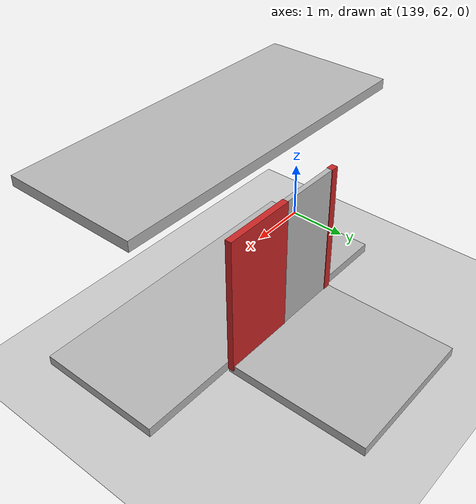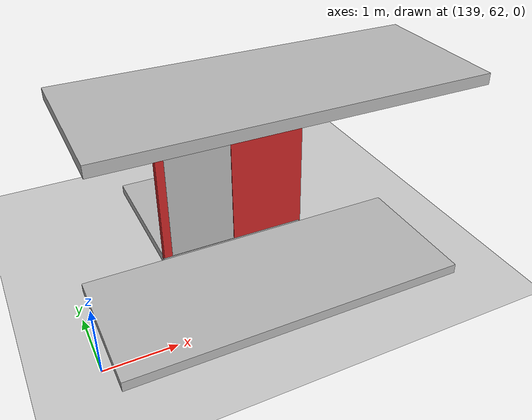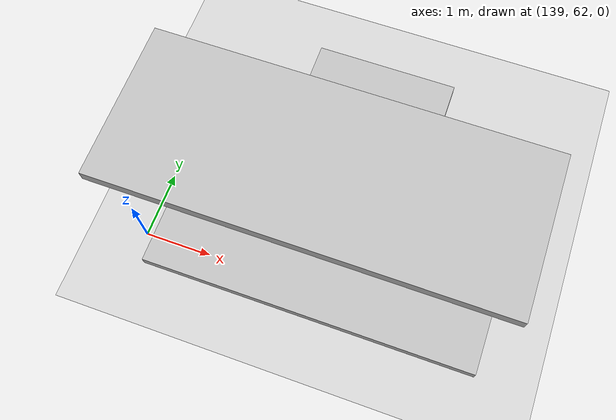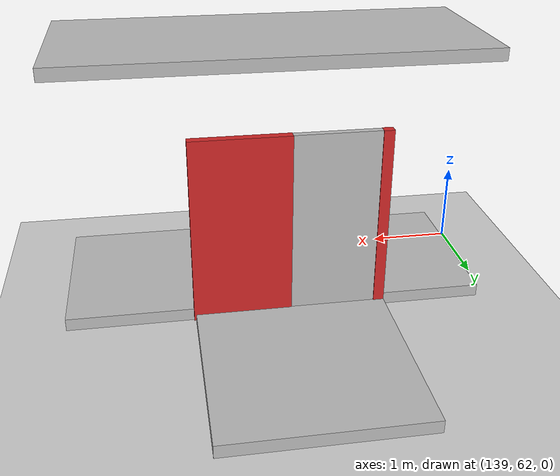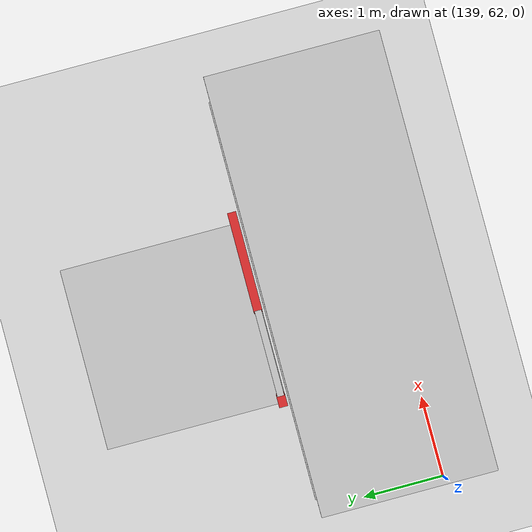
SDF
<?xml version="1.0" ?>
<sdf version="1.5">
  <world name="default">

    <!-- A global light source -->
    <include>
      <uri>model://sun</uri>
    </include>

    <!-- A ground plane -->
    <include>
      <uri>model://ground_plane</uri>
    </include>

    <!-- World plugin that publishes event messages -->
    <plugin filename="libSimEventsPlugin.so" name="elevator_event_plugin">
      <region>
        <name>region1</name>
        <volume>
          <min>140.0 61.0 0</min>
          <max>143.0 63.0 1</max>
        </volume>
      </region>
      <region>
        <name>region2</name>
        <volume>
          <min>140.0 61.0 3</min>
          <max>143.0 63.0 4</max>
        </volume>
      </region>
      <event>
        <name>region1_event</name>
        <type>occupied</type>
        <region>region1</region>
        <topic>~/elevator</topic>
        <msg_data>0</msg_data>
      </event>
      <event>
        <name>region2_event</name>
        <type>occupied</type>
        <region>region2</region>
        <topic>~/elevator</topic>
        <msg_data>1</msg_data>
      </event>
    </plugin>

    <!-- The elevator car -->
    <model name="elevator">
      <pose>141.50 64.73 0.075 0 0 -1.5708</pose>
      <link name="link">
        <inertial>
          <mass>800</mass>
        </inertial>
        <collision name="floor_collision">
          <geometry>
            <box>
              <size>2.25 2.25 0.15</size>
            </box>
          </geometry>
        </collision>
        <visual name="floor_visual">
          <geometry>
            <box>
              <size>2.25 2.25 0.15</size>
            </box>
          </geometry>
        </visual>
      </link>

      <link name="wall1">
        <pose>1.0745 0.5725 1.125 0 0 0</pose>
        <collision name="collision">
          <geometry>
            <box>
              <size>0.1 1.15 2.25</size>
            </box>
          </geometry>
        </collision>
        <visual name="visual">
          <geometry>
            <box>
              <size>0.1 1.15 2.25</size>
            </box>
          </geometry>
          <material>
            <script>
              <name>Gazebo/Red</name>
            </script>
          </material>
        </visual>
      </link>

      <link name="wall2">
        <pose>1.0745 -1.0625 1.125 0 0 0</pose>
        <collision name="collision">
          <geometry>
            <box>
              <size>0.1 0.125 2.25</size>
            </box>
          </geometry>
        </collision>
        <visual name="visual">
          <geometry>
            <box>
              <size>0.1 0.125 2.25</size>
            </box>
          </geometry>
          <material>
            <script>
              <name>Gazebo/Red</name>
            </script>
          </material>
        </visual>
      </link>

      <link name="door">
        <pose>1.0745 -0.5 1.125 0 0 0</pose>
        <collision name="collision">
          <geometry>
            <box>
              <size>0.08 1.0 2.25</size>
            </box>
          </geometry>
        </collision>
        <visual name="visual">
          <geometry>
            <box>
              <size>0.08 1.0 2.25</size>
            </box>
          </geometry>
        </visual>
      </link>

      <joint name="wall1_joint" type="fixed">
        <parent>link</parent>
        <child>wall1</child>
      </joint>
      <joint name="wall2_joint" type="fixed">
        <parent>link</parent>
        <child>wall2</child>
      </joint>
      <joint name="door_joint" type="prismatic">
        <parent>link</parent>
        <child>door</child>
        <axis>
          <xyz>0 1 0</xyz>
          <limit>
            <lower>0</lower>
            <upper>1</upper>
            <effort>10</effort>
          </limit>
          <dynamics>
            <damping>2</damping>
          </dynamics>
        </axis>
      </joint>

      <joint name="lift_joint" type="prismatic">
        <parent>world</parent>
        <child>link</child>
        <axis>
          <xyz>0 0 1</xyz>
          <limit>
            <lower>0</lower>
            <upper>10</upper>
            <effort>100000</effort>
          </limit>
          <dynamics>
            <damping>50</damping>
          </dynamics>
        </axis>
        <physics>
          <ode>
            <implicit_spring_damper>1</implicit_spring_damper>
          </ode>
        </physics>
      </joint>

      <!-- Plugin to control the elevator -->
      <plugin filename="libElevatorPlugin.so" name="elevator_plugin">
        <lift_joint>elevator::lift_joint</lift_joint>
        <door_joint>elevator::door_joint</door_joint>
        <floor_height>3.075</floor_height>
        <door_wait_time>10</door_wait_time>
        <topic>~/elevator</topic>
      </plugin>
    </model>

    <model name="floor0">
      <pose>141.636 62.576 0.075 0 0 -1.5708</pose>
      <static>true</static>
      <link name="link">
        <collision name="floor_collision">
          <geometry>
            <box>
              <size>2.0 5.0 0.15</size>
            </box>
          </geometry>
        </collision>
        <visual name="floor_visual">
          <geometry>
            <box>
              <size>2.0 5.0 0.15</size>
            </box>
          </geometry>
        </visual>
      </link>
    </model>

    <model name="floor1">
      <pose>141.618 62.569 3.075 0 0 -1.5708</pose>
      <static>true</static>
      <link name="link">
        <collision name="floor_collision">
          <geometry>
            <box>
              <size>2.0 5.0 0.15</size>
            </box>
          </geometry>
        </collision>
        <visual name="floor_visual">
          <geometry>
            <box>
              <size>2.0 5.0 0.15</size>
            </box>
          </geometry>
        </visual>
      </link>
    </model>

  </world>
</sdf>
